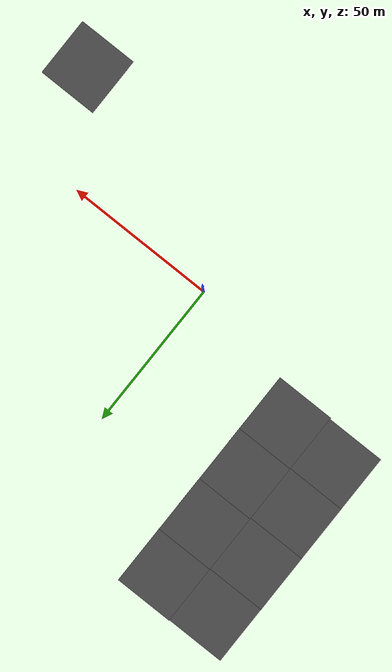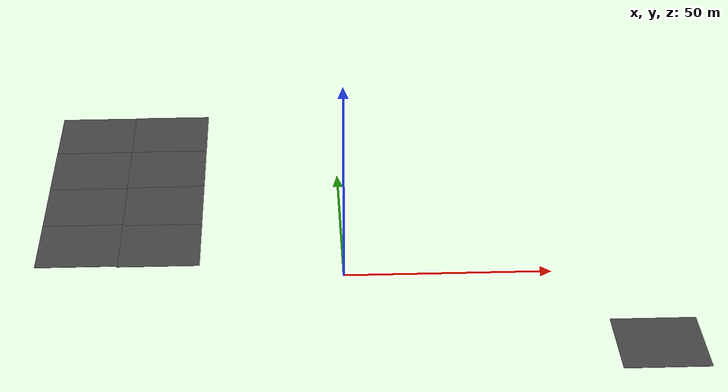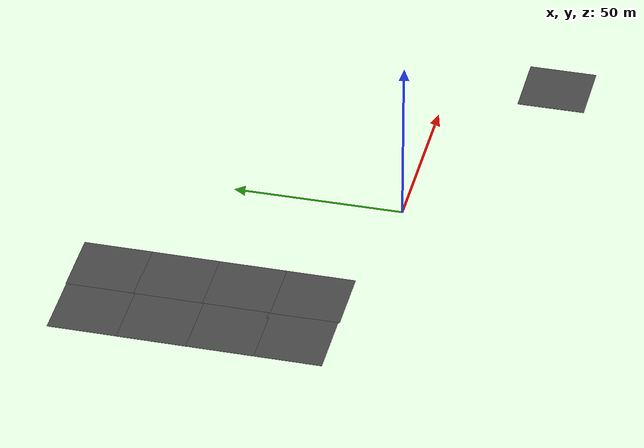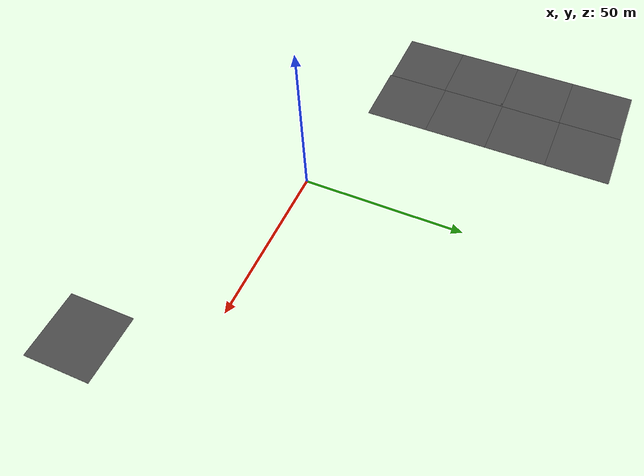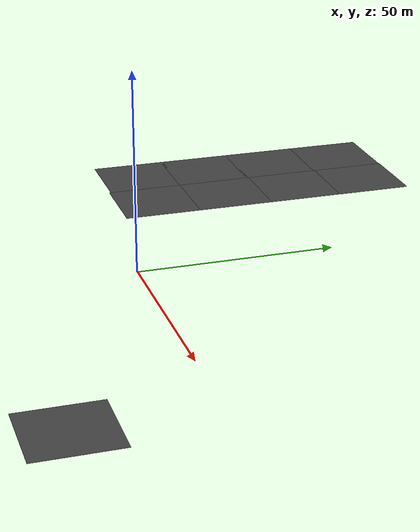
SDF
<sdf version="1.6">
 <world name="default">
  <model name="asphalt_plane_0">
   <static>1</static>
   <link name="link">
    <collision name="collision"><geometry><box><size>20 20 0.1</size></box></geometry></collision>
    <visual name="visual">
     <cast_shadows>0</cast_shadows>
     <geometry><box><size>20 20 0.1</size></box></geometry>
     <material>
      <script>
       <uri>model://asphalt_plane/materials/scripts</uri>
       <uri>model://asphalt_plane/materials/textures</uri>
       <name>vrc/asphalt</name>
      </script>
     </material>
    </visual>
   </link>
   <pose>-64.5165 75.1071 0 0 -0 0</pose>
  </model>
  <model name="asphalt_plane_1">
   <static>1</static>
   <link name="link">
    <collision name="collision"><geometry><box><size>20 20 0.1</size></box></geometry></collision>
    <visual name="visual">
     <cast_shadows>0</cast_shadows>
     <geometry><box><size>20 20 0.1</size></box></geometry>
     <material>
      <script>
       <uri>model://asphalt_plane/materials/scripts</uri>
       <uri>model://asphalt_plane/materials/textures</uri>
       <name>vrc/asphalt</name>
      </script>
     </material>
    </visual>
   </link>
   <pose>-64.552 55.1303 0 0 -0 0</pose>
  </model>
  <model name="asphalt_plane_2">
   <static>1</static>
   <link name="link">
    <collision name="collision"><geometry><box><size>20 20 0.1</size></box></geometry></collision>
    <visual name="visual">
     <cast_shadows>0</cast_shadows>
     <geometry><box><size>20 20 0.1</size></box></geometry>
     <material>
      <script>
       <uri>model://asphalt_plane/materials/scripts</uri>
       <uri>model://asphalt_plane/materials/textures</uri>
       <name>vrc/asphalt</name>
      </script>
     </material>
    </visual>
   </link>
   <pose>-64.5299 35.7195 0 0 -0 0</pose>
  </model>
  <model name="asphalt_plane_3">
   <static>1</static>
   <link name="link">
    <collision name="collision"><geometry><box><size>20 20 0.1</size></box></geometry></collision>
    <visual name="visual">
     <cast_shadows>0</cast_shadows>
     <geometry><box><size>20 20 0.1</size></box></geometry>
     <material>
      <script>
       <uri>model://asphalt_plane/materials/scripts</uri>
       <uri>model://asphalt_plane/materials/textures</uri>
       <name>vrc/asphalt</name>
      </script>
     </material>
    </visual>
   </link>
   <pose>-64.5166 16.3108 0 0 -0 0</pose>
  </model>
  <model name="asphalt_plane_7">
   <static>1</static>
   <link name="link">
    <collision name="collision"><geometry><box><size>20 20 0.1</size></box></geometry></collision>
    <visual name="visual">
     <cast_shadows>0</cast_shadows>
     <geometry><box><size>20 20 0.1</size></box></geometry>
     <material>
      <script>
       <uri>model://asphalt_plane/materials/scripts</uri>
       <uri>model://asphalt_plane/materials/textures</uri>
       <name>vrc/asphalt</name>
      </script>
     </material>
    </visual>
   </link>
   <pose>-44.6095 75.2915 0 0 -0 0</pose>
  </model>
  <model name="asphalt_plane_8">
   <static>1</static>
   <link name="link">
    <collision name="collision"><geometry><box><size>20 20 0.1</size></box></geometry></collision>
    <visual name="visual">
     <cast_shadows>0</cast_shadows>
     <geometry><box><size>20 20 0.1</size></box></geometry>
     <material>
      <script>
       <uri>model://asphalt_plane/materials/scripts</uri>
       <uri>model://asphalt_plane/materials/textures</uri>
       <name>vrc/asphalt</name>
      </script>
     </material>
    </visual>
   </link>
   <pose>-44.6396 55.5127 0 0 -0 0</pose>
  </model>
  <model name="asphalt_plane_9">
   <static>1</static>
   <link name="link">
    <collision name="collision"><geometry><box><size>20 20 0.1</size></box></geometry></collision>
    <visual name="visual">
     <cast_shadows>0</cast_shadows>
     <geometry><box><size>20 20 0.1</size></box></geometry>
     <material>
      <script>
       <uri>model://asphalt_plane/materials/scripts</uri>
       <uri>model://asphalt_plane/materials/textures</uri>
       <name>vrc/asphalt</name>
      </script>
     </material>
    </visual>
   </link>
   <pose>-44.6546 35.8741 0 0 -0 0</pose>
  </model>
  <model name="asphalt_plane_10">
   <static>1</static>
   <link name="link">
    <collision name="collision"><geometry><box><size>20 20 0.1</size></box></geometry></collision>
    <visual name="visual">
     <cast_shadows>0</cast_shadows>
     <geometry><box><size>20 20 0.1</size></box></geometry>
     <material>
      <script>
       <uri>model://asphalt_plane/materials/scripts</uri>
       <uri>model://asphalt_plane/materials/textures</uri>
       <name>vrc/asphalt</name>
      </script>
     </material>
    </visual>
   </link>
   <pose>-44.653 15.9007 0 0 -0 0</pose>
  </model>
  <model name="asphalt_plane">
   <static>1</static>
   <link name="link">
    <collision name="collision"><geometry><box><size>20 20 0.1</size></box></geometry></collision>
    <visual name="visual">
     <cast_shadows>0</cast_shadows>
     <geometry><box><size>20 20 0.1</size></box></geometry>
     <material>
      <script>
       <uri>model://asphalt_plane/materials/scripts</uri>
       <uri>model://asphalt_plane/materials/textures</uri>
       <name>vrc/asphalt</name>
      </script>
     </material>
    </visual>
   </link>
   <pose>70.7475 -31.5972 0 0 -0 0</pose>
  </model>
 </world>
</sdf>
